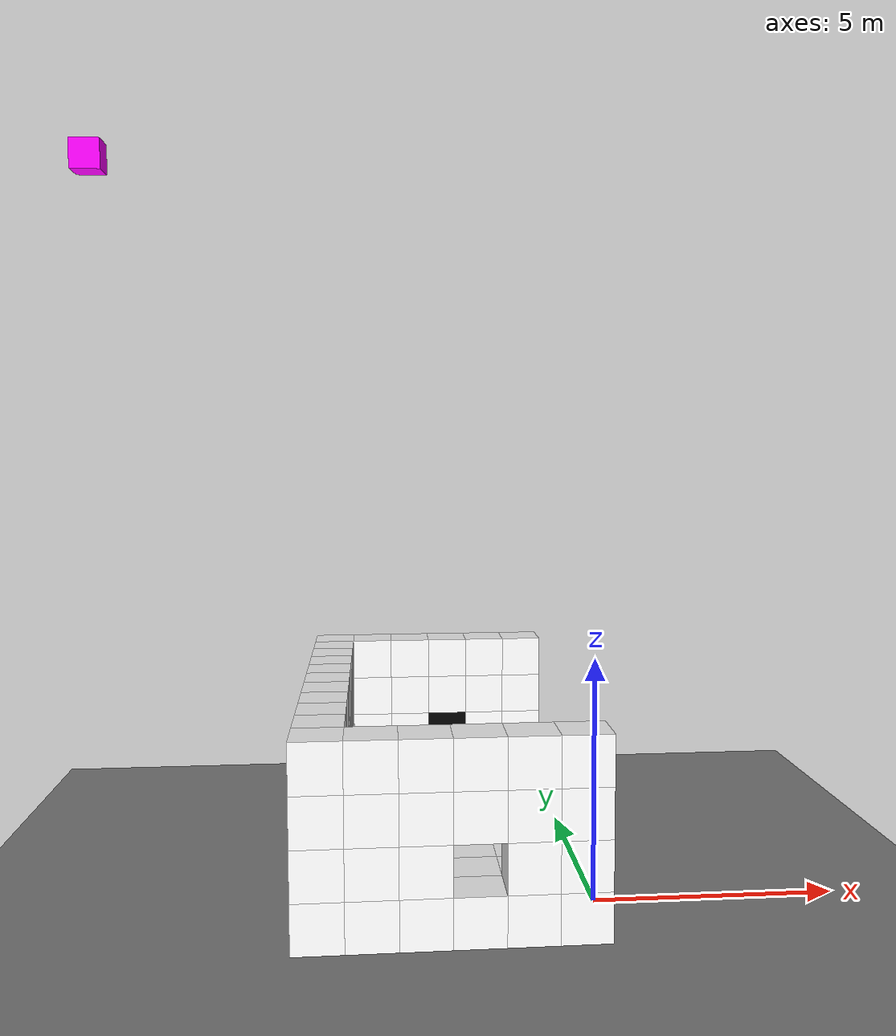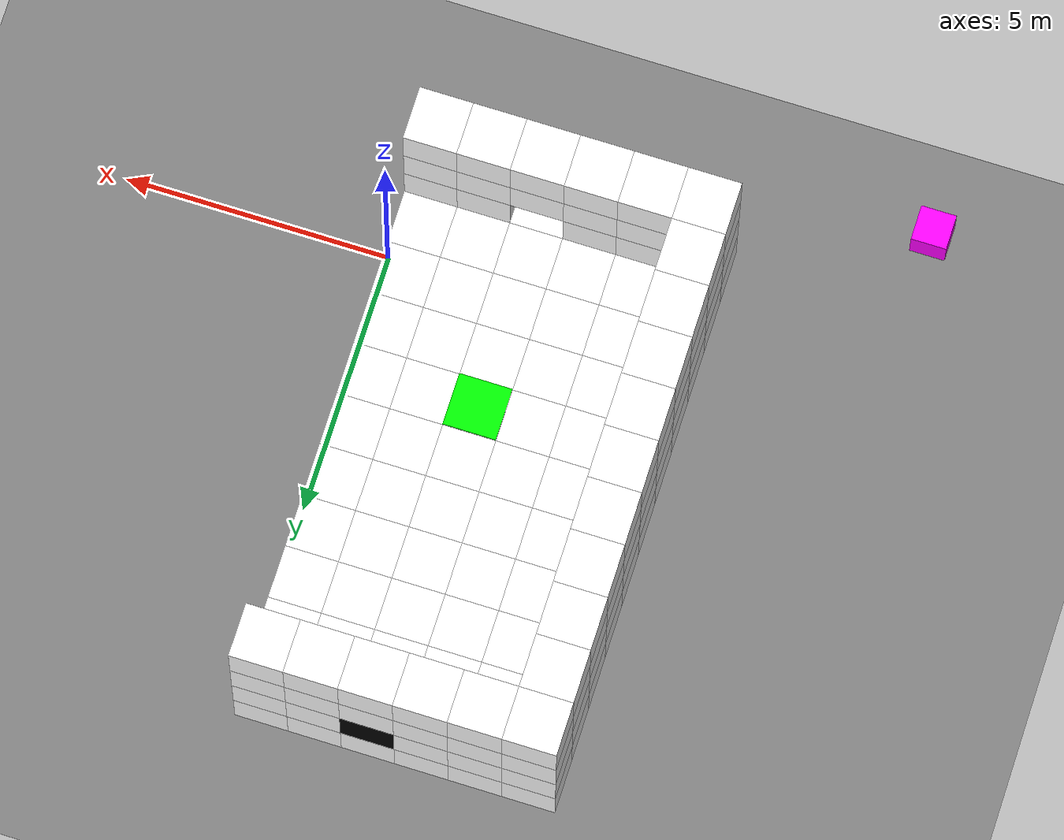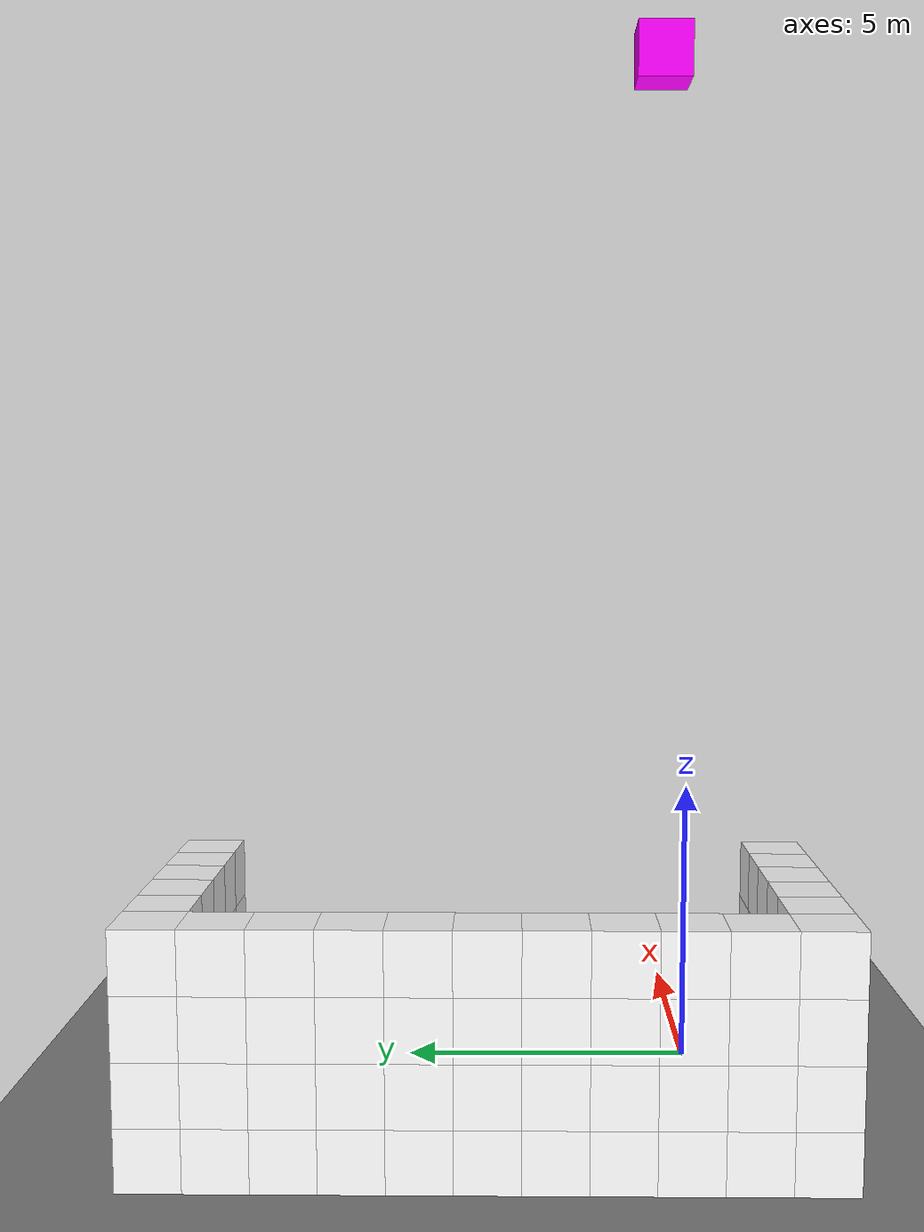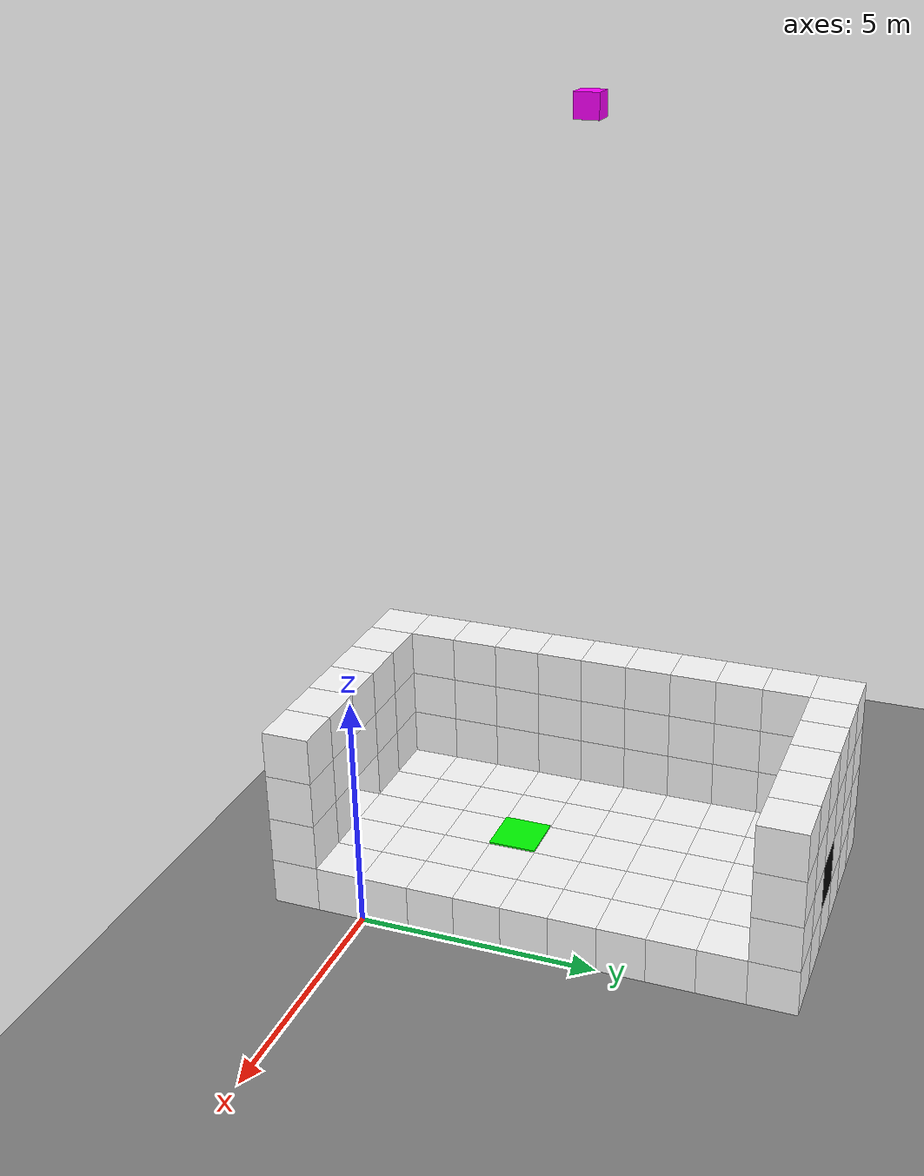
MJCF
<mujoco model="plane_field"><compiler angle="radian" coordinate="local" /><option gravity="0 0 -10 " /><worldbody><geom type="plane" name="field" size="40 40 0.01" pos="0 30 -0.5" /><body name="room1" pos=" -5.5 -1.5 0.5"><body name="button0" pos=" 3.0 4.0 0.52" euler=" 0.0 -0.0 0.0"><geom type="box" size=".5 .5 .02" pos="0 0 0" rgba="0 1 0 1" friction="0.1 0.005 0.0001" /></body><body name="floor0" pos=" 0.0 0.0 0.0" euler=" 0.0 -0.0 0.0"><geom type="box" size=".5 .5 .5" pos="0 0 0" rgba="1 1 1 1" friction="0.5 0.005 0.0001" /></body><body name="floor1" pos=" 0.0 1.0 0.0" euler=" 0.0 -0.0 0.0"><geom type="box" size=".5 .5 .5" pos="0 0 0" rgba="1 1 1 1" friction="0.5 0.005 0.0001" /></body><body name="floor2" pos=" 0.0 2.0 0.0" euler=" 0.0 -0.0 0.0"><geom type="box" size=".5 .5 .5" pos="0 0 0" rgba="1 1 1 1" friction="0.5 0.005 0.0001" /></body><body name="floor3" pos=" 0.0 3.0 0.0" euler=" 0.0 -0.0 0.0"><geom type="box" size=".5 .5 .5" pos="0 0 0" rgba="1 1 1 1" friction="0.5 0.005 0.0001" /></body><body name="floor4" pos=" 0.0 4.0 0.0" euler=" 0.0 -0.0 0.0"><geom type="box" size=".5 .5 .5" pos="0 0 0" rgba="1 1 1 1" friction="0.5 0.005 0.0001" /></body><body name="floor5" pos=" 0.0 5.0 0.0" euler=" 0.0 -0.0 0.0"><geom type="box" size=".5 .5 .5" pos="0 0 0" rgba="1 1 1 1" friction="0.5 0.005 0.0001" /></body><body name="floor6" pos=" 0.0 6.0 0.0" euler=" 0.0 -0.0 0.0"><geom type="box" size=".5 .5 .5" pos="0 0 0" rgba="1 1 1 1" friction="0.5 0.005 0.0001" /></body><body name="floor7" pos=" 0.0 7.0 0.0" euler=" 0.0 -0.0 0.0"><geom type="box" size=".5 .5 .5" pos="0 0 0" rgba="1 1 1 1" friction="0.5 0.005 0.0001" /></body><body name="floor8" pos=" 0.0 8.0 0.0" euler=" 0.0 -0.0 0.0"><geom type="box" size=".5 .5 .5" pos="0 0 0" rgba="1 1 1 1" friction="0.5 0.005 0.0001" /></body><body name="floor9" pos=" 0.0 9.0 0.0" euler=" 0.0 -0.0 0.0"><geom type="box" size=".5 .5 .5" pos="0 0 0" rgba="1 1 1 1" friction="0.5 0.005 0.0001" /></body><body name="floor10" pos=" 0.0 10.0 0.0" euler=" 0.0 -0.0 0.0"><geom type="box" size=".5 .5 .5" pos="0 0 0" rgba="1 1 1 1" friction="0.5 0.005 0.0001" /></body><body name="floor11" pos=" 1.0 0.0 0.0" euler=" 0.0 -0.0 0.0"><geom type="box" size=".5 .5 .5" pos="0 0 0" rgba="1 1 1 1" friction="0.5 0.005 0.0001" /></body><body name="floor12" pos=" 1.0 1.0 0.0" euler=" 0.0 -0.0 0.0"><geom type="box" size=".5 .5 .5" pos="0 0 0" rgba="1 1 1 1" friction="0.5 0.005 0.0001" /></body><body name="floor13" pos=" 1.0 2.0 0.0" euler=" 0.0 -0.0 0.0"><geom type="box" size=".5 .5 .5" pos="0 0 0" rgba="1 1 1 1" friction="0.5 0.005 0.0001" /></body><body name="floor14" pos=" 1.0 3.0 0.0" euler=" 0.0 -0.0 0.0"><geom type="box" size=".5 .5 .5" pos="0 0 0" rgba="1 1 1 1" friction="0.5 0.005 0.0001" /></body><body name="floor15" pos=" 1.0 4.0 0.0" euler=" 0.0 -0.0 0.0"><geom type="box" size=".5 .5 .5" pos="0 0 0" rgba="1 1 1 1" friction="0.5 0.005 0.0001" /></body><body name="floor16" pos=" 1.0 5.0 0.0" euler=" 0.0 -0.0 0.0"><geom type="box" size=".5 .5 .5" pos="0 0 0" rgba="1 1 1 1" friction="0.5 0.005 0.0001" /></body><body name="floor17" pos=" 1.0 6.0 0.0" euler=" 0.0 -0.0 0.0"><geom type="box" size=".5 .5 .5" pos="0 0 0" rgba="1 1 1 1" friction="0.5 0.005 0.0001" /></body><body name="floor18" pos=" 1.0 7.0 0.0" euler=" 0.0 -0.0 0.0"><geom type="box" size=".5 .5 .5" pos="0 0 0" rgba="1 1 1 1" friction="0.5 0.005 0.0001" /></body><body name="floor19" pos=" 1.0 8.0 0.0" euler=" 0.0 -0.0 0.0"><geom type="box" size=".5 .5 .5" pos="0 0 0" rgba="1 1 1 1" friction="0.5 0.005 0.0001" /></body><body name="floor20" pos=" 1.0 9.0 0.0" euler=" 0.0 -0.0 0.0"><geom type="box" size=".5 .5 .5" pos="0 0 0" rgba="1 1 1 1" friction="0.5 0.005 0.0001" /></body><body name="floor21" pos=" 1.0 10.0 0.0" euler=" 0.0 -0.0 0.0"><geom type="box" size=".5 .5 .5" pos="0 0 0" rgba="1 1 1 1" friction="0.5 0.005 0.0001" /></body><body name="floor22" pos=" 2.0 0.0 0.0" euler=" 0.0 -0.0 0.0"><geom type="box" size=".5 .5 .5" pos="0 0 0" rgba="1 1 1 1" friction="0.5 0.005 0.0001" /></body><body name="floor23" pos=" 2.0 1.0 0.0" euler=" 0.0 -0.0 0.0"><geom type="box" size=".5 .5 .5" pos="0 0 0" rgba="1 1 1 1" friction="0.5 0.005 0.0001" /></body><body name="floor24" pos=" 2.0 2.0 0.0" euler=" 0.0 -0.0 0.0"><geom type="box" size=".5 .5 .5" pos="0 0 0" rgba="1 1 1 1" friction="0.5 0.005 0.0001" /></body><body name="floor25" pos=" 2.0 3.0 0.0" euler=" 0.0 -0.0 0.0"><geom type="box" size=".5 .5 .5" pos="0 0 0" rgba="1 1 1 1" friction="0.5 0.005 0.0001" /></body><body name="floor26" pos=" 2.0 4.0 0.0" euler=" 0.0 -0.0 0.0"><geom type="box" size=".5 .5 .5" pos="0 0 0" rgba="1 1 1 1" friction="0.5 0.005 0.0001" /></body><body name="floor27" pos=" 2.0 5.0 0.0" euler=" 0.0 -0.0 0.0"><geom type="box" size=".5 .5 .5" pos="0 0 0" rgba="1 1 1 1" friction="0.5 0.005 0.0001" /></body><body name="floor28" pos=" 2.0 6.0 0.0" euler=" 0.0 -0.0 0.0"><geom type="box" size=".5 .5 .5" pos="0 0 0" rgba="1 1 1 1" friction="0.5 0.005 0.0001" /></body><body name="floor29" pos=" 2.0 7.0 0.0" euler=" 0.0 -0.0 0.0"><geom type="box" size=".5 .5 .5" pos="0 0 0" rgba="1 1 1 1" friction="0.5 0.005 0.0001" /></body><body name="floor30" pos=" 2.0 8.0 0.0" euler=" 0.0 -0.0 0.0"><geom type="box" size=".5 .5 .5" pos="0 0 0" rgba="1 1 1 1" friction="0.5 0.005 0.0001" /></body><body name="floor31" pos=" 2.0 9.0 0.0" euler=" 0.0 -0.0 0.0"><geom type="box" size=".5 .5 .5" pos="0 0 0" rgba="1 1 1 1" friction="0.5 0.005 0.0001" /></body><body name="floor32" pos=" 2.0 10.0 0.0" euler=" 0.0 -0.0 0.0"><geom type="box" size=".5 .5 .5" pos="0 0 0" rgba="1 1 1 1" friction="0.5 0.005 0.0001" /></body><body name="floor33" pos=" 3.0 0.0 0.0" euler=" 0.0 -0.0 0.0"><geom type="box" size=".5 .5 .5" pos="0 0 0" rgba="1 1 1 1" friction="0.5 0.005 0.0001" /></body><body name="floor34" pos=" 3.0 1.0 0.0" euler=" 0.0 -0.0 0.0"><geom type="box" size=".5 .5 .5" pos="0 0 0" rgba="1 1 1 1" friction="0.5 0.005 0.0001" /></body><body name="floor35" pos=" 3.0 2.0 0.0" euler=" 0.0 -0.0 0.0"><geom type="box" size=".5 .5 .5" pos="0 0 0" rgba="1 1 1 1" friction="0.5 0.005 0.0001" /></body><body name="floor36" pos=" 3.0 3.0 0.0" euler=" 0.0 -0.0 0.0"><geom type="box" size=".5 .5 .5" pos="0 0 0" rgba="1 1 1 1" friction="0.5 0.005 0.0001" /></body><body name="floor37" pos=" 3.0 4.0 0.0" euler=" 0.0 -0.0 0.0"><geom type="box" size=".5 .5 .5" pos="0 0 0" rgba="1 1 1 1" friction="0.5 0.005 0.0001" /></body><body name="floor38" pos=" 3.0 5.0 0.0" euler=" 0.0 -0.0 0.0"><geom type="box" size=".5 .5 .5" pos="0 0 0" rgba="1 1 1 1" friction="0.5 0.005 0.0001" /></body><body name="floor39" pos=" 3.0 6.0 0.0" euler=" 0.0 -0.0 0.0"><geom type="box" size=".5 .5 .5" pos="0 0 0" rgba="1 1 1 1" friction="0.5 0.005 0.0001" /></body><body name="floor40" pos=" 3.0 7.0 0.0" euler=" 0.0 -0.0 0.0"><geom type="box" size=".5 .5 .5" pos="0 0 0" rgba="1 1 1 1" friction="0.5 0.005 0.0001" /></body><body name="floor41" pos=" 3.0 8.0 0.0" euler=" 0.0 -0.0 0.0"><geom type="box" size=".5 .5 .5" pos="0 0 0" rgba="1 1 1 1" friction="0.5 0.005 0.0001" /></body><body name="floor42" pos=" 3.0 9.0 0.0" euler=" 0.0 -0.0 0.0"><geom type="box" size=".5 .5 .5" pos="0 0 0" rgba="1 1 1 1" friction="0.5 0.005 0.0001" /></body><body name="floor43" pos=" 3.0 10.0 0.0" euler=" 0.0 -0.0 0.0"><geom type="box" size=".5 .5 .5" pos="0 0 0" rgba="1 1 1 1" friction="0.5 0.005 0.0001" /></body><body name="floor44" pos=" 4.0 0.0 0.0" euler=" 0.0 -0.0 0.0"><geom type="box" size=".5 .5 .5" pos="0 0 0" rgba="1 1 1 1" friction="0.5 0.005 0.0001" /></body><body name="floor45" pos=" 4.0 1.0 0.0" euler=" 0.0 -0.0 0.0"><geom type="box" size=".5 .5 .5" pos="0 0 0" rgba="1 1 1 1" friction="0.5 0.005 0.0001" /></body><body name="floor46" pos=" 4.0 2.0 0.0" euler=" 0.0 -0.0 0.0"><geom type="box" size=".5 .5 .5" pos="0 0 0" rgba="1 1 1 1" friction="0.5 0.005 0.0001" /></body><body name="floor47" pos=" 4.0 3.0 0.0" euler=" 0.0 -0.0 0.0"><geom type="box" size=".5 .5 .5" pos="0 0 0" rgba="1 1 1 1" friction="0.5 0.005 0.0001" /></body><body name="floor48" pos=" 4.0 4.0 0.0" euler=" 0.0 -0.0 0.0"><geom type="box" size=".5 .5 .5" pos="0 0 0" rgba="1 1 1 1" friction="0.5 0.005 0.0001" /></body><body name="floor49" pos=" 4.0 5.0 0.0" euler=" 0.0 -0.0 0.0"><geom type="box" size=".5 .5 .5" pos="0 0 0" rgba="1 1 1 1" friction="0.5 0.005 0.0001" /></body><body name="floor50" pos=" 4.0 6.0 0.0" euler=" 0.0 -0.0 0.0"><geom type="box" size=".5 .5 .5" pos="0 0 0" rgba="1 1 1 1" friction="0.5 0.005 0.0001" /></body><body name="floor51" pos=" 4.0 7.0 0.0" euler=" 0.0 -0.0 0.0"><geom type="box" size=".5 .5 .5" pos="0 0 0" rgba="1 1 1 1" friction="0.5 0.005 0.0001" /></body><body name="floor52" pos=" 4.0 8.0 0.0" euler=" 0.0 -0.0 0.0"><geom type="box" size=".5 .5 .5" pos="0 0 0" rgba="1 1 1 1" friction="0.5 0.005 0.0001" /></body><body name="floor53" pos=" 4.0 9.0 0.0" euler=" 0.0 -0.0 0.0"><geom type="box" size=".5 .5 .5" pos="0 0 0" rgba="1 1 1 1" friction="0.5 0.005 0.0001" /></body><body name="floor54" pos=" 4.0 10.0 0.0" euler=" 0.0 -0.0 0.0"><geom type="box" size=".5 .5 .5" pos="0 0 0" rgba="1 1 1 1" friction="0.5 0.005 0.0001" /></body><body name="floor55" pos=" 5.0 0.0 0.0" euler=" 0.0 -0.0 0.0"><geom type="box" size=".5 .5 .5" pos="0 0 0" rgba="1 1 1 1" friction="0.5 0.005 0.0001" /></body><body name="floor56" pos=" 5.0 1.0 0.0" euler=" 0.0 -0.0 0.0"><geom type="box" size=".5 .5 .5" pos="0 0 0" rgba="1 1 1 1" friction="0.5 0.005 0.0001" /></body><body name="floor57" pos=" 5.0 2.0 0.0" euler=" 0.0 -0.0 0.0"><geom type="box" size=".5 .5 .5" pos="0 0 0" rgba="1 1 1 1" friction="0.5 0.005 0.0001" /></body><body name="floor58" pos=" 5.0 3.0 0.0" euler=" 0.0 -0.0 0.0"><geom type="box" size=".5 .5 .5" pos="0 0 0" rgba="1 1 1 1" friction="0.5 0.005 0.0001" /></body><body name="floor59" pos=" 5.0 4.0 0.0" euler=" 0.0 -0.0 0.0"><geom type="box" size=".5 .5 .5" pos="0 0 0" rgba="1 1 1 1" friction="0.5 0.005 0.0001" /></body><body name="floor60" pos=" 5.0 5.0 0.0" euler=" 0.0 -0.0 0.0"><geom type="box" size=".5 .5 .5" pos="0 0 0" rgba="1 1 1 1" friction="0.5 0.005 0.0001" /></body><body name="floor61" pos=" 5.0 6.0 0.0" euler=" 0.0 -0.0 0.0"><geom type="box" size=".5 .5 .5" pos="0 0 0" rgba="1 1 1 1" friction="0.5 0.005 0.0001" /></body><body name="floor62" pos=" 5.0 7.0 0.0" euler=" 0.0 -0.0 0.0"><geom type="box" size=".5 .5 .5" pos="0 0 0" rgba="1 1 1 1" friction="0.5 0.005 0.0001" /></body><body name="floor63" pos=" 5.0 8.0 0.0" euler=" 0.0 -0.0 0.0"><geom type="box" size=".5 .5 .5" pos="0 0 0" rgba="1 1 1 1" friction="0.5 0.005 0.0001" /></body><body name="floor64" pos=" 5.0 9.0 0.0" euler=" 0.0 -0.0 0.0"><geom type="box" size=".5 .5 .5" pos="0 0 0" rgba="1 1 1 1" friction="0.5 0.005 0.0001" /></body><body name="floor65" pos=" 5.0 10.0 0.0" euler=" 0.0 -0.0 0.0"><geom type="box" size=".5 .5 .5" pos="0 0 0" rgba="1 1 1 1" friction="0.5 0.005 0.0001" /></body><body name="wall0" pos=" 0.0 0.0 1.0" euler=" 0.0 -0.0 0.0"><geom type="box" size=".5 .5 .5" pos="0 0 0" rgba="1 1 1 1" friction="0.1 0.005 0.0001" /></body><body name="wall1" pos=" 0.0 0.0 2.0" euler=" 0.0 -0.0 0.0"><geom type="box" size=".5 .5 .5" pos="0 0 0" rgba="1 1 1 1" friction="0.1 0.005 0.0001" /></body><body name="wall2" pos=" 0.0 0.0 3.0" euler=" 0.0 -0.0 0.0"><geom type="box" size=".5 .5 .5" pos="0 0 0" rgba="1 1 1 1" friction="0.1 0.005 0.0001" /></body><body name="wall3" pos=" 0.0 1.0 1.0" euler=" 0.0 -0.0 0.0"><geom type="box" size=".5 .5 .5" pos="0 0 0" rgba="1 1 1 1" friction="0.1 0.005 0.0001" /></body><body name="wall4" pos=" 0.0 1.0 2.0" euler=" 0.0 -0.0 0.0"><geom type="box" size=".5 .5 .5" pos="0 0 0" rgba="1 1 1 1" friction="0.1 0.005 0.0001" /></body><body name="wall5" pos=" 0.0 1.0 3.0" euler=" 0.0 -0.0 0.0"><geom type="box" size=".5 .5 .5" pos="0 0 0" rgba="1 1 1 1" friction="0.1 0.005 0.0001" /></body><body name="wall6" pos=" 0.0 2.0 1.0" euler=" 0.0 -0.0 0.0"><geom type="box" size=".5 .5 .5" pos="0 0 0" rgba="1 1 1 1" friction="0.1 0.005 0.0001" /></body><body name="wall7" pos=" 0.0 2.0 2.0" euler=" 0.0 -0.0 0.0"><geom type="box" size=".5 .5 .5" pos="0 0 0" rgba="1 1 1 1" friction="0.1 0.005 0.0001" /></body><body name="wall8" pos=" 0.0 2.0 3.0" euler=" 0.0 -0.0 0.0"><geom type="box" size=".5 .5 .5" pos="0 0 0" rgba="1 1 1 1" friction="0.1 0.005 0.0001" /></body><body name="wall9" pos=" 0.0 3.0 1.0" euler=" 0.0 -0.0 0.0"><geom type="box" size=".5 .5 .5" pos="0 0 0" rgba="1 1 1 1" friction="0.1 0.005 0.0001" /></body><body name="wall10" pos=" 0.0 3.0 2.0" euler=" 0.0 -0.0 0.0"><geom type="box" size=".5 .5 .5" pos="0 0 0" rgba="1 1 1 1" friction="0.1 0.005 0.0001" /></body><body name="wall11" pos=" 0.0 3.0 3.0" euler=" 0.0 -0.0 0.0"><geom type="box" size=".5 .5 .5" pos="0 0 0" rgba="1 1 1 1" friction="0.1 0.005 0.0001" /></body><body name="wall12" pos=" 0.0 4.0 1.0" euler=" 0.0 -0.0 0.0"><geom type="box" size=".5 .5 .5" pos="0 0 0" rgba="1 1 1 1" friction="0.1 0.005 0.0001" /></body><body name="wall13" pos=" 0.0 4.0 2.0" euler=" 0.0 -0.0 0.0"><geom type="box" size=".5 .5 .5" pos="0 0 0" rgba="1 1 1 1" friction="0.1 0.005 0.0001" /></body><body name="wall14" pos=" 0.0 4.0 3.0" euler=" 0.0 -0.0 0.0"><geom type="box" size=".5 .5 .5" pos="0 0 0" rgba="1 1 1 1" friction="0.1 0.005 0.0001" /></body><body name="wall15" pos=" 0.0 5.0 1.0" euler=" 0.0 -0.0 0.0"><geom type="box" size=".5 .5 .5" pos="0 0 0" rgba="1 1 1 1" friction="0.1 0.005 0.0001" /></body><body name="wall16" pos=" 0.0 5.0 2.0" euler=" 0.0 -0.0 0.0"><geom type="box" size=".5 .5 .5" pos="0 0 0" rgba="1 1 1 1" friction="0.1 0.005 0.0001" /></body><body name="wall17" pos=" 0.0 5.0 3.0" euler=" 0.0 -0.0 0.0"><geom type="box" size=".5 .5 .5" pos="0 0 0" rgba="1 1 1 1" friction="0.1 0.005 0.0001" /></body><body name="wall18" pos=" 0.0 6.0 1.0" euler=" 0.0 -0.0 0.0"><geom type="box" size=".5 .5 .5" pos="0 0 0" rgba="1 1 1 1" friction="0.1 0.005 0.0001" /></body><body name="wall19" pos=" 0.0 6.0 2.0" euler=" 0.0 -0.0 0.0"><geom type="box" size=".5 .5 .5" pos="0 0 0" rgba="1 1 1 1" friction="0.1 0.005 0.0001" /></body><body name="wall20" pos=" 0.0 6.0 3.0" euler=" 0.0 -0.0 0.0"><geom type="box" size=".5 .5 .5" pos="0 0 0" rgba="1 1 1 1" friction="0.1 0.005 0.0001" /></body><body name="wall21" pos=" 0.0 7.0 1.0" euler=" 0.0 -0.0 0.0"><geom type="box" size=".5 .5 .5" pos="0 0 0" rgba="1 1 1 1" friction="0.1 0.005 0.0001" /></body><body name="wall22" pos=" 0.0 7.0 2.0" euler=" 0.0 -0.0 0.0"><geom type="box" size=".5 .5 .5" pos="0 0 0" rgba="1 1 1 1" friction="0.1 0.005 0.0001" /></body><body name="wall23" pos=" 0.0 7.0 3.0" euler=" 0.0 -0.0 0.0"><geom type="box" size=".5 .5 .5" pos="0 0 0" rgba="1 1 1 1" friction="0.1 0.005 0.0001" /></body><body name="wall24" pos=" 0.0 8.0 1.0" euler=" 0.0 -0.0 0.0"><geom type="box" size=".5 .5 .5" pos="0 0 0" rgba="1 1 1 1" friction="0.1 0.005 0.0001" /></body><body name="wall25" pos=" 0.0 8.0 2.0" euler=" 0.0 -0.0 0.0"><geom type="box" size=".5 .5 .5" pos="0 0 0" rgba="1 1 1 1" friction="0.1 0.005 0.0001" /></body><body name="wall26" pos=" 0.0 8.0 3.0" euler=" 0.0 -0.0 0.0"><geom type="box" size=".5 .5 .5" pos="0 0 0" rgba="1 1 1 1" friction="0.1 0.005 0.0001" /></body><body name="wall27" pos=" 0.0 9.0 1.0" euler=" 0.0 -0.0 0.0"><geom type="box" size=".5 .5 .5" pos="0 0 0" rgba="1 1 1 1" friction="0.1 0.005 0.0001" /></body><body name="wall28" pos=" 0.0 9.0 2.0" euler=" 0.0 -0.0 0.0"><geom type="box" size=".5 .5 .5" pos="0 0 0" rgba="1 1 1 1" friction="0.1 0.005 0.0001" /></body><body name="wall29" pos=" 0.0 9.0 3.0" euler=" 0.0 -0.0 0.0"><geom type="box" size=".5 .5 .5" pos="0 0 0" rgba="1 1 1 1" friction="0.1 0.005 0.0001" /></body><body name="wall30" pos=" 0.0 10.0 1.0" euler=" 0.0 -0.0 0.0"><geom type="box" size=".5 .5 .5" pos="0 0 0" rgba="1 1 1 1" friction="0.1 0.005 0.0001" /></body><body name="wall31" pos=" 0.0 10.0 2.0" euler=" 0.0 -0.0 0.0"><geom type="box" size=".5 .5 .5" pos="0 0 0" rgba="1 1 1 1" friction="0.1 0.005 0.0001" /></body><body name="wall32" pos=" 0.0 10.0 3.0" euler=" 0.0 -0.0 0.0"><geom type="box" size=".5 .5 .5" pos="0 0 0" rgba="1 1 1 1" friction="0.1 0.005 0.0001" /></body><body name="wall33" pos=" 1.0 0.0 1.0" euler=" 0.0 -0.0 0.0"><geom type="box" size=".5 .5 .5" pos="0 0 0" rgba="1 1 1 1" friction="0.1 0.005 0.0001" /></body><body name="wall34" pos=" 1.0 0.0 2.0" euler=" 0.0 -0.0 0.0"><geom type="box" size=".5 .5 .5" pos="0 0 0" rgba="1 1 1 1" friction="0.1 0.005 0.0001" /></body><body name="wall35" pos=" 1.0 0.0 3.0" euler=" 0.0 -0.0 0.0"><geom type="box" size=".5 .5 .5" pos="0 0 0" rgba="1 1 1 1" friction="0.1 0.005 0.0001" /></body><body name="wall36" pos=" 1.0 10.0 1.0" euler=" 0.0 -0.0 0.0"><geom type="box" size=".5 .5 .5" pos="0 0 0" rgba="1 1 1 1" friction="0.1 0.005 0.0001" /></body><body name="wall37" pos=" 1.0 10.0 2.0" euler=" 0.0 -0.0 0.0"><geom type="box" size=".5 .5 .5" pos="0 0 0" rgba="1 1 1 1" friction="0.1 0.005 0.0001" /></body><body name="wall38" pos=" 1.0 10.0 3.0" euler=" 0.0 -0.0 0.0"><geom type="box" size=".5 .5 .5" pos="0 0 0" rgba="1 1 1 1" friction="0.1 0.005 0.0001" /></body><body name="wall39" pos=" 2.0 0.0 1.0" euler=" 0.0 -0.0 0.0"><geom type="box" size=".5 .5 .5" pos="0 0 0" rgba="1 1 1 1" friction="0.1 0.005 0.0001" /></body><body name="wall40" pos=" 2.0 0.0 2.0" euler=" 0.0 -0.0 0.0"><geom type="box" size=".5 .5 .5" pos="0 0 0" rgba="1 1 1 1" friction="0.1 0.005 0.0001" /></body><body name="wall41" pos=" 2.0 0.0 3.0" euler=" 0.0 -0.0 0.0"><geom type="box" size=".5 .5 .5" pos="0 0 0" rgba="1 1 1 1" friction="0.1 0.005 0.0001" /></body><body name="wall42" pos=" 2.0 10.0 1.0" euler=" 0.0 -0.0 0.0"><geom type="box" size=".5 .5 .5" pos="0 0 0" rgba="1 1 1 1" friction="0.1 0.005 0.0001" /></body><body name="wall43" pos=" 2.0 10.0 2.0" euler=" 0.0 -0.0 0.0"><geom type="box" size=".5 .5 .5" pos="0 0 0" rgba="1 1 1 1" friction="0.1 0.005 0.0001" /></body><body name="wall44" pos=" 2.0 10.0 3.0" euler=" 0.0 -0.0 0.0"><geom type="box" size=".5 .5 .5" pos="0 0 0" rgba="1 1 1 1" friction="0.1 0.005 0.0001" /></body><body name="wall45" pos=" 3.0 0.0 2.0" euler=" 0.0 -0.0 0.0"><geom type="box" size=".5 .5 .5" pos="0 0 0" rgba="1 1 1 1" friction="0.1 0.005 0.0001" /></body><body name="wall46" pos=" 3.0 0.0 3.0" euler=" 0.0 -0.0 0.0"><geom type="box" size=".5 .5 .5" pos="0 0 0" rgba="1 1 1 1" friction="0.1 0.005 0.0001" /></body><body name="wall47" pos=" 3.0 10.0 2.0" euler=" 0.0 -0.0 0.0"><geom type="box" size=".5 .5 .5" pos="0 0 0" rgba="1 1 1 1" friction="0.1 0.005 0.0001" /></body><body name="wall48" pos=" 3.0 10.0 3.0" euler=" 0.0 -0.0 0.0"><geom type="box" size=".5 .5 .5" pos="0 0 0" rgba="1 1 1 1" friction="0.1 0.005 0.0001" /></body><body name="wall49" pos=" 4.0 0.0 1.0" euler=" 0.0 -0.0 0.0"><geom type="box" size=".5 .5 .5" pos="0 0 0" rgba="1 1 1 1" friction="0.1 0.005 0.0001" /></body><body name="wall50" pos=" 4.0 0.0 2.0" euler=" 0.0 -0.0 0.0"><geom type="box" size=".5 .5 .5" pos="0 0 0" rgba="1 1 1 1" friction="0.1 0.005 0.0001" /></body><body name="wall51" pos=" 4.0 0.0 3.0" euler=" 0.0 -0.0 0.0"><geom type="box" size=".5 .5 .5" pos="0 0 0" rgba="1 1 1 1" friction="0.1 0.005 0.0001" /></body><body name="wall52" pos=" 4.0 10.0 1.0" euler=" 0.0 -0.0 0.0"><geom type="box" size=".5 .5 .5" pos="0 0 0" rgba="1 1 1 1" friction="0.1 0.005 0.0001" /></body><body name="wall53" pos=" 4.0 10.0 2.0" euler=" 0.0 -0.0 0.0"><geom type="box" size=".5 .5 .5" pos="0 0 0" rgba="1 1 1 1" friction="0.1 0.005 0.0001" /></body><body name="wall54" pos=" 4.0 10.0 3.0" euler=" 0.0 -0.0 0.0"><geom type="box" size=".5 .5 .5" pos="0 0 0" rgba="1 1 1 1" friction="0.1 0.005 0.0001" /></body><body name="wall55" pos=" 5.0 0.0 1.0" euler=" 0.0 -0.0 0.0"><geom type="box" size=".5 .5 .5" pos="0 0 0" rgba="1 1 1 1" friction="0.1 0.005 0.0001" /></body><body name="wall56" pos=" 5.0 0.0 2.0" euler=" 0.0 -0.0 0.0"><geom type="box" size=".5 .5 .5" pos="0 0 0" rgba="1 1 1 1" friction="0.1 0.005 0.0001" /></body><body name="wall57" pos=" 5.0 0.0 3.0" euler=" 0.0 -0.0 0.0"><geom type="box" size=".5 .5 .5" pos="0 0 0" rgba="1 1 1 1" friction="0.1 0.005 0.0001" /></body><body name="wall58" pos=" 5.0 10.0 1.0" euler=" 0.0 -0.0 0.0"><geom type="box" size=".5 .5 .5" pos="0 0 0" rgba="1 1 1 1" friction="0.1 0.005 0.0001" /></body><body name="wall59" pos=" 5.0 10.0 2.0" euler=" 0.0 -0.0 0.0"><geom type="box" size=".5 .5 .5" pos="0 0 0" rgba="1 1 1 1" friction="0.1 0.005 0.0001" /></body><body name="wall60" pos=" 5.0 10.0 3.0" euler=" 0.0 -0.0 0.0"><geom type="box" size=".5 .5 .5" pos="0 0 0" rgba="1 1 1 1" friction="0.1 0.005 0.0001" /></body><body name="door" pos=" 3.0 10.0 1.0" euler=" 0.0 -0.0 0.0"><geom type="box" size=".5 .5 .5" pos="0 0 0" rgba="0 0 0 1" friction="1 0.005 0.0001" /></body></body><body name="Albert" pos="-10 1.5 15">

            <joint type="free" axis="0 0 0" pos="0 0 0" damping="1" />
            <inertial pos="0 0 0" mass="10.0" diaginertia="0.001 0.001 0.001" />
            <geom type="box" size=".3 .3 .3" pos="0 0 0" rgba="1 0 1 1" />
        </body>
    </worldbody></mujoco>
